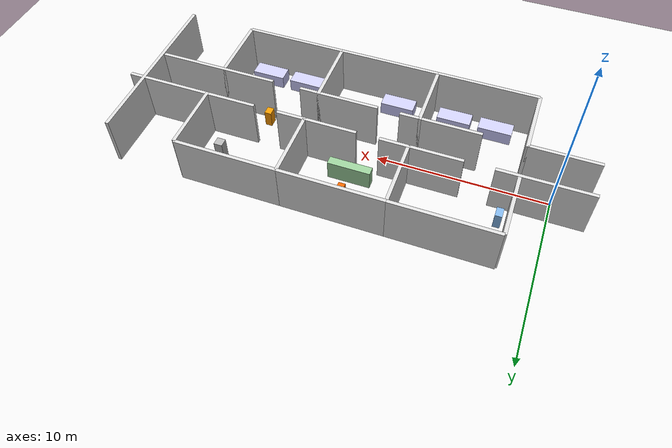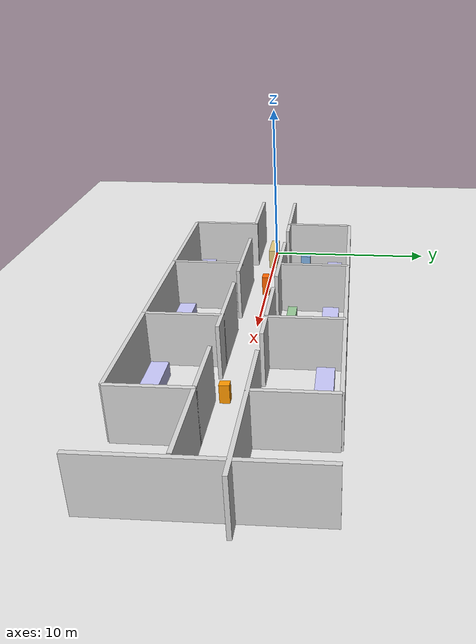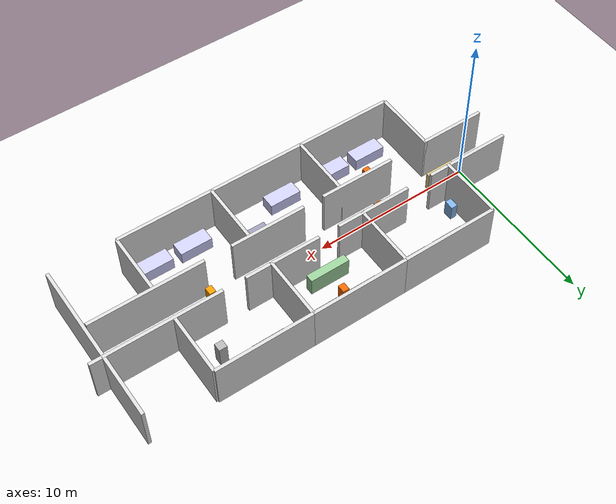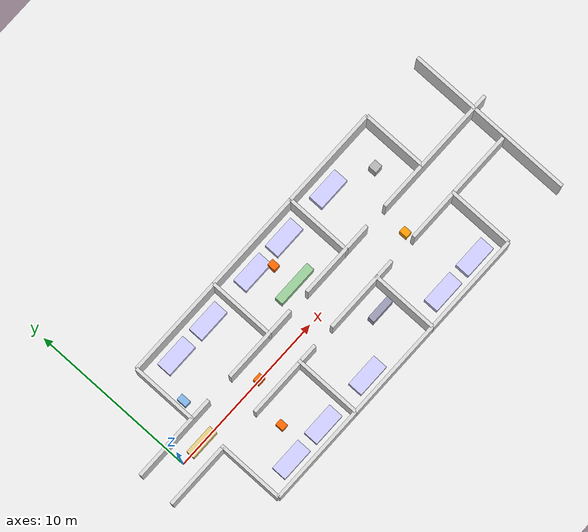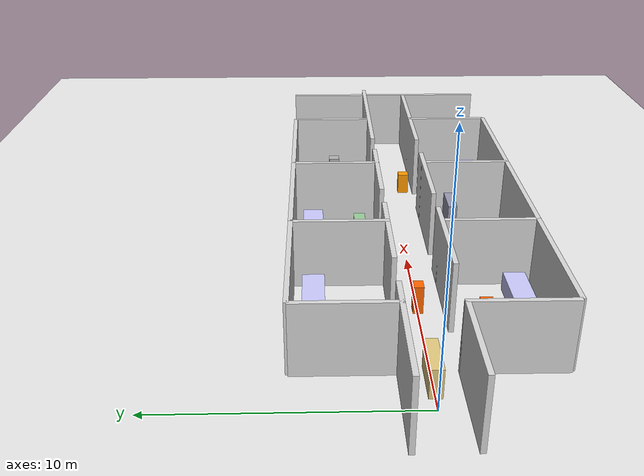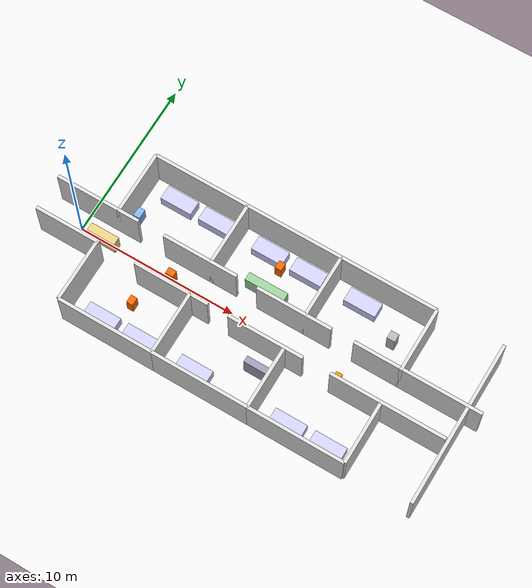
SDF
<?xml version="1.0" ?>
<sdf version="1.8">
  <world name="hospital">

    <!-- Earth reference frame for GPS/NavSat and Magnetometer sensors -->
    <spherical_coordinates>
      <surface_model>EARTH_WGS84</surface_model>
      <latitude_deg>51.5074</latitude_deg>
      <longitude_deg>-0.1278</longitude_deg>
      <elevation>0</elevation>
      <heading_deg>0</heading_deg>
    </spherical_coordinates>

    <!-- ── System plugins ──────────────────────────────────────────────── -->
    <plugin filename="gz-sim-physics-system"         name="gz::sim::systems::Physics"/>
    <plugin filename="gz-sim-user-commands-system"   name="gz::sim::systems::UserCommands"/>
    <plugin filename="gz-sim-scene-broadcaster-system" name="gz::sim::systems::SceneBroadcaster"/>
    <plugin filename="gz-sim-sensors-system"         name="gz::sim::systems::Sensors">
      <render_engine>ogre2</render_engine>
    </plugin>
    <plugin filename="gz-sim-imu-system"               name="gz::sim::systems::Imu"/>
    <plugin filename="gz-sim-navsat-system"           name="gz::sim::systems::NavSat"/>
    <plugin filename="gz-sim-magnetometer-system"     name="gz::sim::systems::Magnetometer"/>

    <!-- ── Lighting ────────────────────────────────────────────────────── -->
    <light type="directional" name="sun">
      <cast_shadows>true</cast_shadows>
      <pose>0 0 15 0 0 0</pose>
      <diffuse>0.9 0.9 0.9 1</diffuse>
      <specular>0.3 0.3 0.3 1</specular>
      <attenuation><range>1000</range><constant>0.9</constant><linear>0.01</linear><quadratic>0.001</quadratic></attenuation>
      <direction>-0.5 0.1 -0.9</direction>
    </light>

    <!-- ── Ground ──────────────────────────────────────────────────────── -->
    <model name="ground_plane"><static>true</static>
      <link name="link">
        <collision name="col"><geometry><plane><normal>0 0 1</normal><size>100 100</size></plane></geometry></collision>
        <visual name="vis">
          <geometry><plane><normal>0 0 1</normal><size>100 100</size></plane></geometry>
          <material><ambient>0.92 0.92 0.92 1</ambient><diffuse>0.92 0.92 0.92 1</diffuse></material>
        </visual>
      </link>
    </model>

    <!-- ── MAIN CORRIDOR WALLS ─────────────────────────────────────────── -->
    <!-- North wall, 4 segments with 3 doorways at x≈4.3, x≈10.3, x≈16.3 -->
    <model name="corr_n_w1"><static>true</static><pose>0.65 1.1 1.5 0 0 0</pose>
      <link name="l"><collision name="c"><geometry><box><size>5.3 0.2 3</size></box></geometry><surface><friction><ode><mu>0.05</mu><mu2>0.05</mu2></ode></friction></surface></collision>
      <visual name="v"><geometry><box><size>5.3 0.2 3</size></box></geometry><material><ambient>0.85 0.85 0.85 1</ambient><diffuse>0.85 0.85 0.85 1</diffuse></material></visual></link></model>
    <model name="corr_n_w2"><static>true</static><pose>7.3 1.1 1.5 0 0 0</pose>
      <link name="l"><collision name="c"><geometry><box><size>4.7 0.2 3</size></box></geometry><surface><friction><ode><mu>0.05</mu><mu2>0.05</mu2></ode></friction></surface></collision>
      <visual name="v"><geometry><box><size>4.7 0.2 3</size></box></geometry><material><ambient>0.85 0.85 0.85 1</ambient><diffuse>0.85 0.85 0.85 1</diffuse></material></visual></link></model>
    <model name="corr_n_w3"><static>true</static><pose>13.3 1.1 1.5 0 0 0</pose>
      <link name="l"><collision name="c"><geometry><box><size>4.7 0.2 3</size></box></geometry><surface><friction><ode><mu>0.05</mu><mu2>0.05</mu2></ode></friction></surface></collision>
      <visual name="v"><geometry><box><size>4.7 0.2 3</size></box></geometry><material><ambient>0.85 0.85 0.85 1</ambient><diffuse>0.85 0.85 0.85 1</diffuse></material></visual></link></model>
    <model name="corr_n_w4"><static>true</static><pose>21.0 1.1 1.5 0 0 0</pose>
      <link name="l"><collision name="c"><geometry><box><size>7.9 0.2 3</size></box></geometry><surface><friction><ode><mu>0.05</mu><mu2>0.05</mu2></ode></friction></surface></collision>
      <visual name="v"><geometry><box><size>7.9 0.2 3</size></box></geometry><material><ambient>0.85 0.85 0.85 1</ambient><diffuse>0.85 0.85 0.85 1</diffuse></material></visual></link></model>

    <!-- South wall, doors offset from north for non-symmetric layout -->
    <model name="corr_s_w1"><static>true</static><pose>0 -1.1 1.5 0 0 0</pose>
      <link name="l"><collision name="c"><geometry><box><size>4.0 0.2 3</size></box></geometry><surface><friction><ode><mu>0.05</mu><mu2>0.05</mu2></ode></friction></surface></collision>
      <visual name="v"><geometry><box><size>4.0 0.2 3</size></box></geometry><material><ambient>0.85 0.85 0.85 1</ambient><diffuse>0.85 0.85 0.85 1</diffuse></material></visual></link></model>
    <model name="corr_s_w2"><static>true</static><pose>6.8 -1.1 1.5 0 0 0</pose>
      <link name="l"><collision name="c"><geometry><box><size>4.7 0.2 3</size></box></geometry><surface><friction><ode><mu>0.05</mu><mu2>0.05</mu2></ode></friction></surface></collision>
      <visual name="v"><geometry><box><size>4.7 0.2 3</size></box></geometry><material><ambient>0.85 0.85 0.85 1</ambient><diffuse>0.85 0.85 0.85 1</diffuse></material></visual></link></model>
    <model name="corr_s_w3"><static>true</static><pose>12.8 -1.1 1.5 0 0 0</pose>
      <link name="l"><collision name="c"><geometry><box><size>4.7 0.2 3</size></box></geometry><surface><friction><ode><mu>0.05</mu><mu2>0.05</mu2></ode></friction></surface></collision>
      <visual name="v"><geometry><box><size>4.7 0.2 3</size></box></geometry><material><ambient>0.85 0.85 0.85 1</ambient><diffuse>0.85 0.85 0.85 1</diffuse></material></visual></link></model>
    <model name="corr_s_w4"><static>true</static><pose>20.4 -1.1 1.5 0 0 0</pose>
      <link name="l"><collision name="c"><geometry><box><size>7.1 0.2 3</size></box></geometry><surface><friction><ode><mu>0.05</mu><mu2>0.05</mu2></ode></friction></surface></collision>
      <visual name="v"><geometry><box><size>7.1 0.2 3</size></box></geometry><material><ambient>0.85 0.85 0.85 1</ambient><diffuse>0.85 0.85 0.85 1</diffuse></material></visual></link></model>

    <!-- Corridor east end wall -->
    <model name="corr_east"><static>true</static><pose>24.1 0 1.5 0 0 0</pose>
      <link name="l"><collision name="c"><geometry><box><size>0.2 10.2 3</size></box></geometry><surface><friction><ode><mu>0.05</mu><mu2>0.05</mu2></ode></friction></surface></collision>
      <visual name="v"><geometry><box><size>0.2 10.2 3</size></box></geometry><material><ambient>0.85 0.85 0.85 1</ambient><diffuse>0.85 0.85 0.85 1</diffuse></material></visual></link></model>

    <!-- ── NORTH WARD ROOMS ────────────────────────────────────────────── -->
    <!-- Room N1: x=2 to 8, y=1 to 5 -->
    <model name="n1_north"><static>true</static><pose>5 5 1.5 0 0 0</pose>
      <link name="l"><collision name="c"><geometry><box><size>6 0.2 3</size></box></geometry><surface><friction><ode><mu>0.05</mu><mu2>0.05</mu2></ode></friction></surface></collision>
      <visual name="v"><geometry><box><size>6 0.2 3</size></box></geometry><material><ambient>0.85 0.85 0.85 1</ambient><diffuse>0.85 0.85 0.85 1</diffuse></material></visual></link></model>
    <model name="n1_west"><static>true</static><pose>2 3 1.5 0 0 0</pose>
      <link name="l"><collision name="c"><geometry><box><size>0.2 4 3</size></box></geometry><surface><friction><ode><mu>0.05</mu><mu2>0.05</mu2></ode></friction></surface></collision>
      <visual name="v"><geometry><box><size>0.2 4 3</size></box></geometry><material><ambient>0.85 0.85 0.85 1</ambient><diffuse>0.85 0.85 0.85 1</diffuse></material></visual></link></model>
    <!-- East wall of N1 = West wall of N2 -->
    <model name="n1n2_div"><static>true</static><pose>8 3 1.5 0 0 0</pose>
      <link name="l"><collision name="c"><geometry><box><size>0.2 4 3</size></box></geometry><surface><friction><ode><mu>0.05</mu><mu2>0.05</mu2></ode></friction></surface></collision>
      <visual name="v"><geometry><box><size>0.2 4 3</size></box></geometry><material><ambient>0.85 0.85 0.85 1</ambient><diffuse>0.85 0.85 0.85 1</diffuse></material></visual></link></model>
    <!-- Beds and equipment in N1 -->
    <model name="n1_bed1"><static>true</static><pose>4 4.1 0.4 0 0 0</pose>
      <link name="l"><collision name="c"><geometry><box><size>2 0.9 0.8</size></box></geometry><surface><friction><ode><mu>0.05</mu><mu2>0.05</mu2></ode></friction></surface></collision>
      <visual name="v"><geometry><box><size>2 0.9 0.8</size></box></geometry><material><ambient>0.8 0.8 1 1</ambient><diffuse>0.8 0.8 1 1</diffuse></material></visual></link></model>
    <model name="n1_bed2"><static>true</static><pose>6.5 4.1 0.4 0 0 0</pose>
      <link name="l"><collision name="c"><geometry><box><size>2 0.9 0.8</size></box></geometry><surface><friction><ode><mu>0.05</mu><mu2>0.05</mu2></ode></friction></surface></collision>
      <visual name="v"><geometry><box><size>2 0.9 0.8</size></box></geometry><material><ambient>0.8 0.8 1 1</ambient><diffuse>0.8 0.8 1 1</diffuse></material></visual></link></model>
    <model name="n1_cart"><static>true</static><pose>2.5 2.2 0.5 0 0 0</pose>
      <link name="l"><collision name="c"><geometry><box><size>0.4 0.6 1.0</size></box></geometry><surface><friction><ode><mu>0.05</mu><mu2>0.05</mu2></ode></friction></surface></collision>
      <visual name="v"><geometry><box><size>0.4 0.6 1.0</size></box></geometry><material><ambient>0.5 0.7 0.9 1</ambient><diffuse>0.5 0.7 0.9 1</diffuse></material></visual></link></model>

    <!-- Room N2: x=8 to 14, y=1 to 5 -->
    <model name="n2_north"><static>true</static><pose>11 5 1.5 0 0 0</pose>
      <link name="l"><collision name="c"><geometry><box><size>6 0.2 3</size></box></geometry><surface><friction><ode><mu>0.05</mu><mu2>0.05</mu2></ode></friction></surface></collision>
      <visual name="v"><geometry><box><size>6 0.2 3</size></box></geometry><material><ambient>0.85 0.85 0.85 1</ambient><diffuse>0.85 0.85 0.85 1</diffuse></material></visual></link></model>
    <model name="n2n3_div"><static>true</static><pose>14 3 1.5 0 0 0</pose>
      <link name="l"><collision name="c"><geometry><box><size>0.2 4 3</size></box></geometry><surface><friction><ode><mu>0.05</mu><mu2>0.05</mu2></ode></friction></surface></collision>
      <visual name="v"><geometry><box><size>0.2 4 3</size></box></geometry><material><ambient>0.85 0.85 0.85 1</ambient><diffuse>0.85 0.85 0.85 1</diffuse></material></visual></link></model>
    <model name="n2_bed1"><static>true</static><pose>10 4.1 0.4 0 0 0</pose>
      <link name="l"><collision name="c"><geometry><box><size>2 0.9 0.8</size></box></geometry><surface><friction><ode><mu>0.05</mu><mu2>0.05</mu2></ode></friction></surface></collision>
      <visual name="v"><geometry><box><size>2 0.9 0.8</size></box></geometry><material><ambient>0.8 0.8 1 1</ambient><diffuse>0.8 0.8 1 1</diffuse></material></visual></link></model>
    <model name="n2_bed2"><static>true</static><pose>12.5 4.1 0.4 0 0 0</pose>
      <link name="l"><collision name="c"><geometry><box><size>2 0.9 0.8</size></box></geometry><surface><friction><ode><mu>0.05</mu><mu2>0.05</mu2></ode></friction></surface></collision>
      <visual name="v"><geometry><box><size>2 0.9 0.8</size></box></geometry><material><ambient>0.8 0.8 1 1</ambient><diffuse>0.8 0.8 1 1</diffuse></material></visual></link></model>
    <model name="n2_station"><static>true</static><pose>11 2 0.6 0 0 0</pose>
      <link name="l"><collision name="c"><geometry><box><size>2.5 0.5 1.2</size></box></geometry><surface><friction><ode><mu>0.05</mu><mu2>0.05</mu2></ode></friction></surface></collision>
      <visual name="v"><geometry><box><size>2.5 0.5 1.2</size></box></geometry><material><ambient>0.6 0.8 0.6 1</ambient><diffuse>0.6 0.8 0.6 1</diffuse></material></visual></link></model>

    <!-- Room N3: x=14 to 20, y=1 to 5 -->
    <model name="n3_north"><static>true</static><pose>17 5 1.5 0 0 0</pose>
      <link name="l"><collision name="c"><geometry><box><size>6 0.2 3</size></box></geometry><surface><friction><ode><mu>0.05</mu><mu2>0.05</mu2></ode></friction></surface></collision>
      <visual name="v"><geometry><box><size>6 0.2 3</size></box></geometry><material><ambient>0.85 0.85 0.85 1</ambient><diffuse>0.85 0.85 0.85 1</diffuse></material></visual></link></model>
    <model name="n3_east"><static>true</static><pose>20 3 1.5 0 0 0</pose>
      <link name="l"><collision name="c"><geometry><box><size>0.2 4 3</size></box></geometry><surface><friction><ode><mu>0.05</mu><mu2>0.05</mu2></ode></friction></surface></collision>
      <visual name="v"><geometry><box><size>0.2 4 3</size></box></geometry><material><ambient>0.85 0.85 0.85 1</ambient><diffuse>0.85 0.85 0.85 1</diffuse></material></visual></link></model>
    <model name="n3_bed1"><static>true</static><pose>16 4.1 0.4 0 0 0</pose>
      <link name="l"><collision name="c"><geometry><box><size>2 0.9 0.8</size></box></geometry><surface><friction><ode><mu>0.05</mu><mu2>0.05</mu2></ode></friction></surface></collision>
      <visual name="v"><geometry><box><size>2 0.9 0.8</size></box></geometry><material><ambient>0.8 0.8 1 1</ambient><diffuse>0.8 0.8 1 1</diffuse></material></visual></link></model>
    <model name="n3_equipment"><static>true</static><pose>18.5 3 0.7 0 0 0</pose>
      <link name="l"><collision name="c"><geometry><box><size>0.5 0.5 1.4</size></box></geometry><surface><friction><ode><mu>0.05</mu><mu2>0.05</mu2></ode></friction></surface></collision>
      <visual name="v"><geometry><box><size>0.5 0.5 1.4</size></box></geometry><material><ambient>0.7 0.7 0.7 1</ambient><diffuse>0.7 0.7 0.7 1</diffuse></material></visual></link></model>

    <!-- ── SOUTH WARD ROOMS ────────────────────────────────────────────── -->
    <!-- Room S1: x=2 to 8, y=-5 to -1 -->
    <model name="s1_south"><static>true</static><pose>5 -5 1.5 0 0 0</pose>
      <link name="l"><collision name="c"><geometry><box><size>6 0.2 3</size></box></geometry><surface><friction><ode><mu>0.05</mu><mu2>0.05</mu2></ode></friction></surface></collision>
      <visual name="v"><geometry><box><size>6 0.2 3</size></box></geometry><material><ambient>0.85 0.85 0.85 1</ambient><diffuse>0.85 0.85 0.85 1</diffuse></material></visual></link></model>
    <model name="s1_west"><static>true</static><pose>2 -3 1.5 0 0 0</pose>
      <link name="l"><collision name="c"><geometry><box><size>0.2 4 3</size></box></geometry><surface><friction><ode><mu>0.05</mu><mu2>0.05</mu2></ode></friction></surface></collision>
      <visual name="v"><geometry><box><size>0.2 4 3</size></box></geometry><material><ambient>0.85 0.85 0.85 1</ambient><diffuse>0.85 0.85 0.85 1</diffuse></material></visual></link></model>
    <model name="s1s2_div"><static>true</static><pose>8 -3 1.5 0 0 0</pose>
      <link name="l"><collision name="c"><geometry><box><size>0.2 4 3</size></box></geometry><surface><friction><ode><mu>0.05</mu><mu2>0.05</mu2></ode></friction></surface></collision>
      <visual name="v"><geometry><box><size>0.2 4 3</size></box></geometry><material><ambient>0.85 0.85 0.85 1</ambient><diffuse>0.85 0.85 0.85 1</diffuse></material></visual></link></model>
    <model name="s1_bed1"><static>true</static><pose>4 -4.1 0.4 0 0 0</pose>
      <link name="l"><collision name="c"><geometry><box><size>2 0.9 0.8</size></box></geometry><surface><friction><ode><mu>0.05</mu><mu2>0.05</mu2></ode></friction></surface></collision>
      <visual name="v"><geometry><box><size>2 0.9 0.8</size></box></geometry><material><ambient>0.8 0.8 1 1</ambient><diffuse>0.8 0.8 1 1</diffuse></material></visual></link></model>
    <model name="s1_bed2"><static>true</static><pose>6.5 -4.1 0.4 0 0 0</pose>
      <link name="l"><collision name="c"><geometry><box><size>2 0.9 0.8</size></box></geometry><surface><friction><ode><mu>0.05</mu><mu2>0.05</mu2></ode></friction></surface></collision>
      <visual name="v"><geometry><box><size>2 0.9 0.8</size></box></geometry><material><ambient>0.8 0.8 1 1</ambient><diffuse>0.8 0.8 1 1</diffuse></material></visual></link></model>

    <!-- Room S2: x=8 to 14, y=-5 to -1 -->
    <model name="s2_south"><static>true</static><pose>11 -5 1.5 0 0 0</pose>
      <link name="l"><collision name="c"><geometry><box><size>6 0.2 3</size></box></geometry><surface><friction><ode><mu>0.05</mu><mu2>0.05</mu2></ode></friction></surface></collision>
      <visual name="v"><geometry><box><size>6 0.2 3</size></box></geometry><material><ambient>0.85 0.85 0.85 1</ambient><diffuse>0.85 0.85 0.85 1</diffuse></material></visual></link></model>
    <model name="s2s3_div"><static>true</static><pose>14 -3 1.5 0 0 0</pose>
      <link name="l"><collision name="c"><geometry><box><size>0.2 4 3</size></box></geometry><surface><friction><ode><mu>0.05</mu><mu2>0.05</mu2></ode></friction></surface></collision>
      <visual name="v"><geometry><box><size>0.2 4 3</size></box></geometry><material><ambient>0.85 0.85 0.85 1</ambient><diffuse>0.85 0.85 0.85 1</diffuse></material></visual></link></model>
    <model name="s2_bed1"><static>true</static><pose>10 -4.1 0.4 0 0 0</pose>
      <link name="l"><collision name="c"><geometry><box><size>2 0.9 0.8</size></box></geometry><surface><friction><ode><mu>0.05</mu><mu2>0.05</mu2></ode></friction></surface></collision>
      <visual name="v"><geometry><box><size>2 0.9 0.8</size></box></geometry><material><ambient>0.8 0.8 1 1</ambient><diffuse>0.8 0.8 1 1</diffuse></material></visual></link></model>
    <model name="s2_locker"><static>true</static><pose>13 -2.3 0.75 0 0 0</pose>
      <link name="l"><collision name="c"><geometry><box><size>1.5 0.4 1.5</size></box></geometry><surface><friction><ode><mu>0.05</mu><mu2>0.05</mu2></ode></friction></surface></collision>
      <visual name="v"><geometry><box><size>1.5 0.4 1.5</size></box></geometry><material><ambient>0.6 0.6 0.7 1</ambient><diffuse>0.6 0.6 0.7 1</diffuse></material></visual></link></model>

    <!-- Room S3: x=14 to 20, y=-5 to -1 -->
    <model name="s3_south"><static>true</static><pose>17 -5 1.5 0 0 0</pose>
      <link name="l"><collision name="c"><geometry><box><size>6 0.2 3</size></box></geometry><surface><friction><ode><mu>0.05</mu><mu2>0.05</mu2></ode></friction></surface></collision>
      <visual name="v"><geometry><box><size>6 0.2 3</size></box></geometry><material><ambient>0.85 0.85 0.85 1</ambient><diffuse>0.85 0.85 0.85 1</diffuse></material></visual></link></model>
    <model name="s3_east"><static>true</static><pose>20 -3 1.5 0 0 0</pose>
      <link name="l"><collision name="c"><geometry><box><size>0.2 4 3</size></box></geometry><surface><friction><ode><mu>0.05</mu><mu2>0.05</mu2></ode></friction></surface></collision>
      <visual name="v"><geometry><box><size>0.2 4 3</size></box></geometry><material><ambient>0.85 0.85 0.85 1</ambient><diffuse>0.85 0.85 0.85 1</diffuse></material></visual></link></model>
    <model name="s3_bed1"><static>true</static><pose>16 -4.1 0.4 0 0 0</pose>
      <link name="l"><collision name="c"><geometry><box><size>2 0.9 0.8</size></box></geometry><surface><friction><ode><mu>0.05</mu><mu2>0.05</mu2></ode></friction></surface></collision>
      <visual name="v"><geometry><box><size>2 0.9 0.8</size></box></geometry><material><ambient>0.8 0.8 1 1</ambient><diffuse>0.8 0.8 1 1</diffuse></material></visual></link></model>
    <model name="s3_bed2"><static>true</static><pose>18.5 -4.1 0.4 0 0 0</pose>
      <link name="l"><collision name="c"><geometry><box><size>2 0.9 0.8</size></box></geometry><surface><friction><ode><mu>0.05</mu><mu2>0.05</mu2></ode></friction></surface></collision>
      <visual name="v"><geometry><box><size>2 0.9 0.8</size></box></geometry><material><ambient>0.8 0.8 1 1</ambient><diffuse>0.8 0.8 1 1</diffuse></material></visual></link></model>

    <!-- Nurse station in main corridor -->
    <model name="nurse_station"><static>true</static><pose>1.5 0 0.6 0 0 0</pose>
      <link name="l"><collision name="c"><geometry><box><size>1.8 0.5 1.2</size></box></geometry><surface><friction><ode><mu>0.05</mu><mu2>0.05</mu2></ode></friction></surface></collision>
      <visual name="v"><geometry><box><size>1.8 0.5 1.2</size></box></geometry><material><ambient>0.9 0.8 0.5 1</ambient><diffuse>0.9 0.8 0.5 1</diffuse></material></visual></link></model>

    <!-- Cart 1: patrols entire main corridor -->
    <model name="cart_corridor">
      <pose>6 0 0.6 0 0 0</pose>
      <link name="body">
        <inertial><mass>30</mass><inertia><ixx>2</ixx><ixy>0</ixy><ixz>0</ixz><iyy>2</iyy><iyz>0</iyz><izz>1</izz></inertia></inertial>
        <collision name="col"><geometry><box><size>0.5 0.4 1.2</size></box></geometry><surface><friction><ode><mu>0.05</mu><mu2>0.05</mu2></ode></friction></surface></collision>
        <visual name="vis"><geometry><box><size>0.5 0.4 1.2</size></box></geometry>
          <material><ambient>1.0 0.4 0.0 1</ambient><diffuse>1.0 0.4 0.0 1</diffuse></material></visual>
      </link>
      <plugin filename="gz-sim-trajectory-follower-system" name="gz::sim::systems::TrajectoryFollower">
        <link_name>body</link_name><loop>true</loop><force>100</force><torque>30</torque>
        <waypoints><waypoint>3 0</waypoint><waypoint>21 0</waypoint></waypoints>
      </plugin>
    </model>

    <!-- Cart 2: patrols north room N2 -->
    <model name="cart_n2">
      <pose>11 3.5 0.6 0 0 0</pose>
      <link name="body">
        <inertial><mass>20</mass><inertia><ixx>1</ixx><ixy>0</ixy><ixz>0</ixz><iyy>1</iyy><iyz>0</iyz><izz>1</izz></inertia></inertial>
        <collision name="col"><geometry><box><size>0.4 0.5 1.0</size></box></geometry><surface><friction><ode><mu>0.05</mu><mu2>0.05</mu2></ode></friction></surface></collision>
        <visual name="vis"><geometry><box><size>0.4 0.5 1.0</size></box></geometry>
          <material><ambient>1.0 0.4 0.0 1</ambient><diffuse>1.0 0.4 0.0 1</diffuse></material></visual>
      </link>
      <plugin filename="gz-sim-trajectory-follower-system" name="gz::sim::systems::TrajectoryFollower">
        <link_name>body</link_name><loop>true</loop><force>100</force><torque>30</torque>
        <waypoints><waypoint>11 2.8</waypoint><waypoint>11 4.5</waypoint></waypoints>
      </plugin>
    </model>

    <!-- Cart 3: patrols south room S1 -->
    <model name="cart_s1">
      <pose>5 -2.5 0.6 0 0 0</pose>
      <link name="body">
        <inertial><mass>20</mass><inertia><ixx>1</ixx><ixy>0</ixy><ixz>0</ixz><iyy>1</iyy><iyz>0</iyz><izz>1</izz></inertia></inertial>
        <collision name="col"><geometry><box><size>0.4 0.5 1.0</size></box></geometry><surface><friction><ode><mu>0.05</mu><mu2>0.05</mu2></ode></friction></surface></collision>
        <visual name="vis"><geometry><box><size>0.4 0.5 1.0</size></box></geometry>
          <material><ambient>1.0 0.4 0.0 1</ambient><diffuse>1.0 0.4 0.0 1</diffuse></material></visual>
      </link>
      <plugin filename="gz-sim-trajectory-follower-system" name="gz::sim::systems::TrajectoryFollower">
        <link_name>body</link_name><loop>true</loop><force>100</force><torque>30</torque>
        <waypoints><waypoint>3 -2.5</waypoint><waypoint>7 -2.5</waypoint></waypoints>
      </plugin>
    </model>

    <!-- Cart 4: crosses doorway between corridor and south room S3 -->
    <model name="cart_s3_door">
      <pose>17 -0.5 0.6 0 0 0</pose>
      <link name="body">
        <inertial><mass>20</mass><inertia><ixx>1</ixx><ixy>0</ixy><ixz>0</ixz><iyy>1</iyy><iyz>0</iyz><izz>1</izz></inertia></inertial>
        <collision name="col"><geometry><box><size>0.4 0.5 1.0</size></box></geometry><surface><friction><ode><mu>0.05</mu><mu2>0.05</mu2></ode></friction></surface></collision>
        <visual name="vis"><geometry><box><size>0.4 0.5 1.0</size></box></geometry>
          <material><ambient>1.0 0.6 0.0 1</ambient><diffuse>1.0 0.6 0.0 1</diffuse></material></visual>
      </link>
      <plugin filename="gz-sim-trajectory-follower-system" name="gz::sim::systems::TrajectoryFollower">
        <link_name>body</link_name><loop>true</loop><force>100</force><torque>30</torque>
        <waypoints><waypoint>14 0</waypoint><waypoint>22 0</waypoint></waypoints>
      </plugin>
    </model>

  </world>
</sdf>
